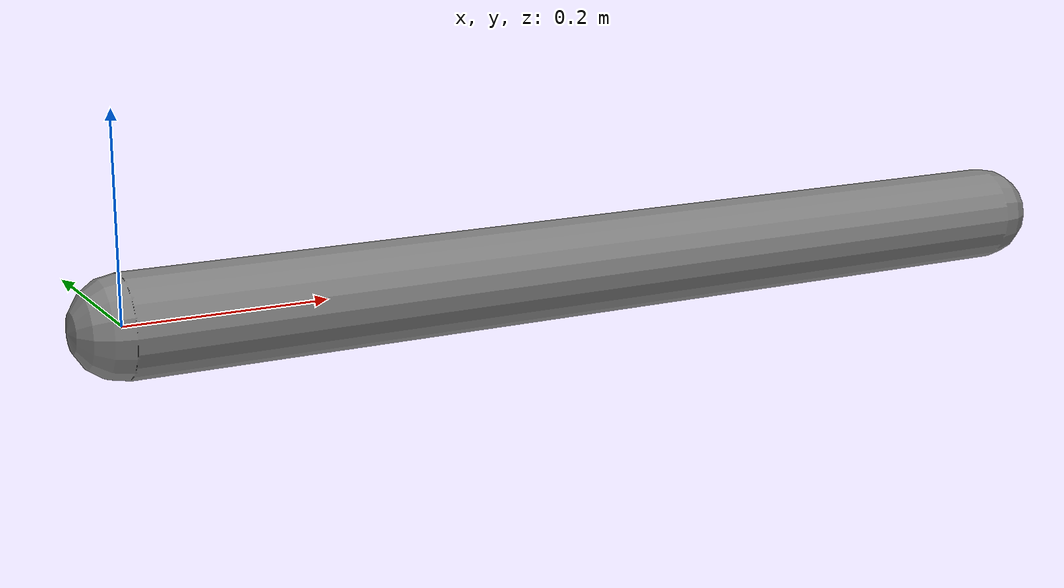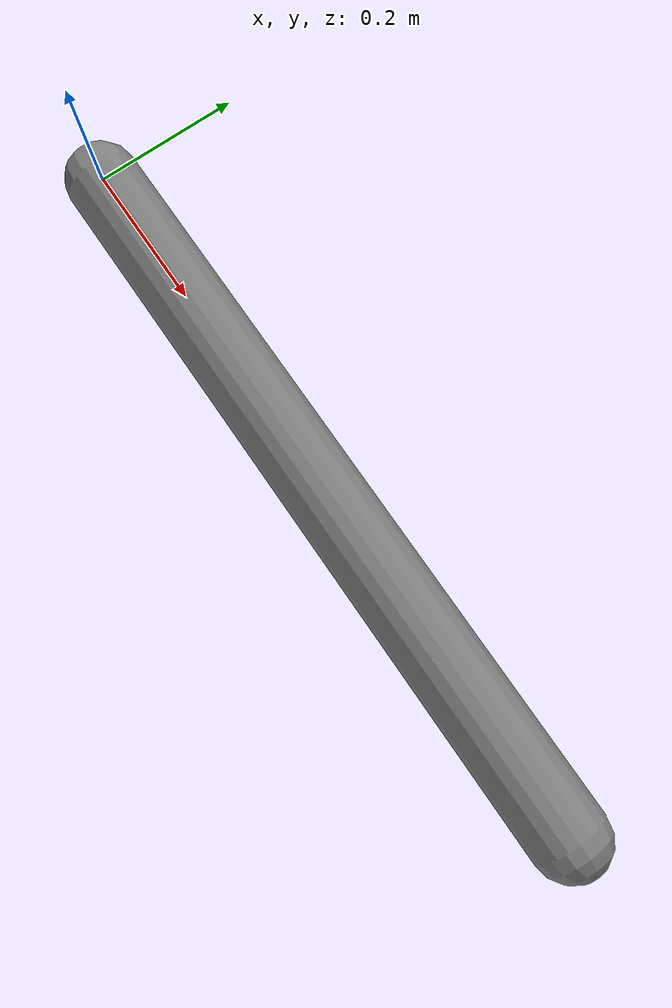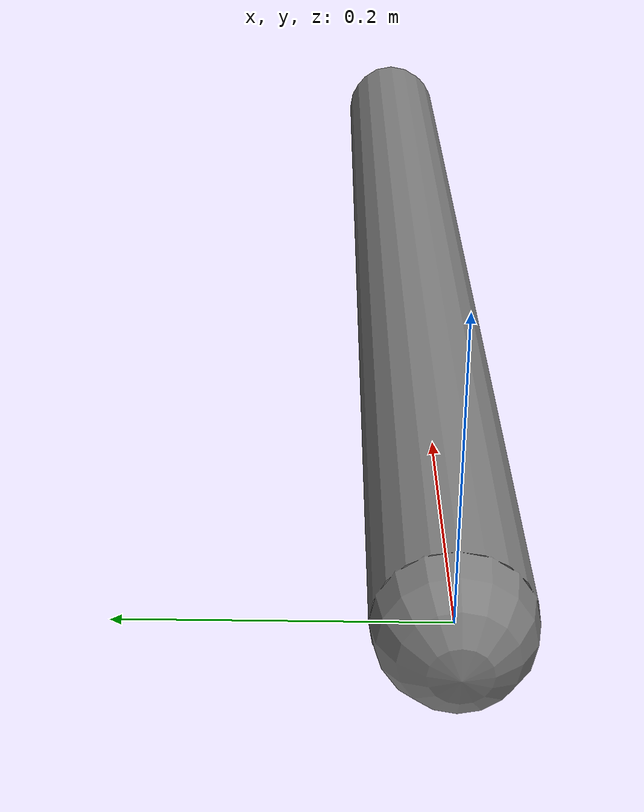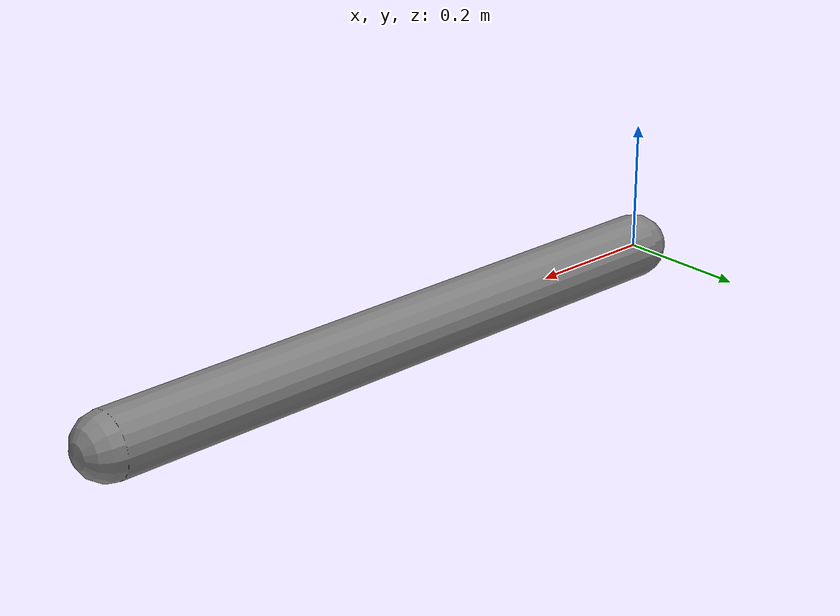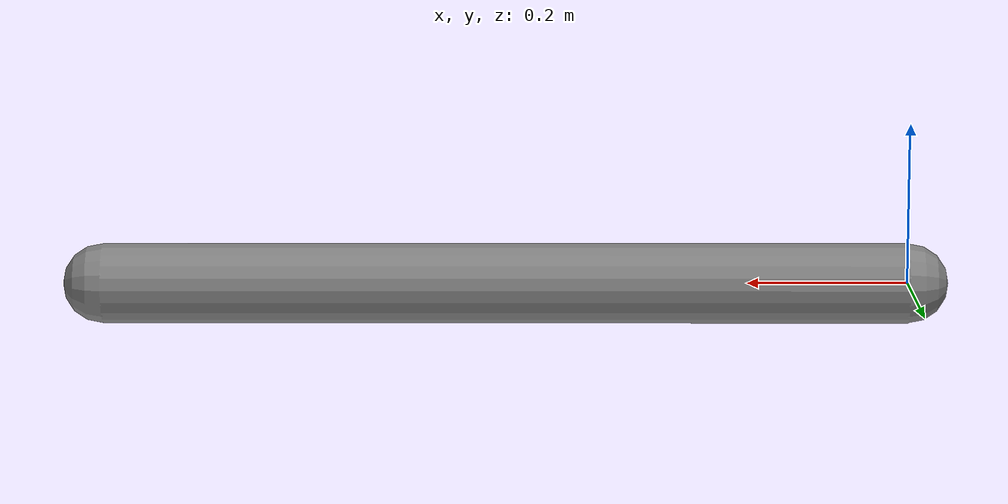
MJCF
<mujoco model="pendulum">

    <option timestep="0.002"
            gravity="0 0 0"/>

    <worldbody>

        <body name="arm">

            <joint
                name="hinge"
                type="hinge"
                axis="0 0 1"
            />

            <geom
                type="capsule"
                fromto="0 0 0 1 0 0"
                size="0.05"
                mass="1"
            />

        </body>

    </worldbody>

    <actuator>

        <motor
            name="motor"
            joint="hinge"
            gear="1"
        />

    </actuator>

</mujoco>
